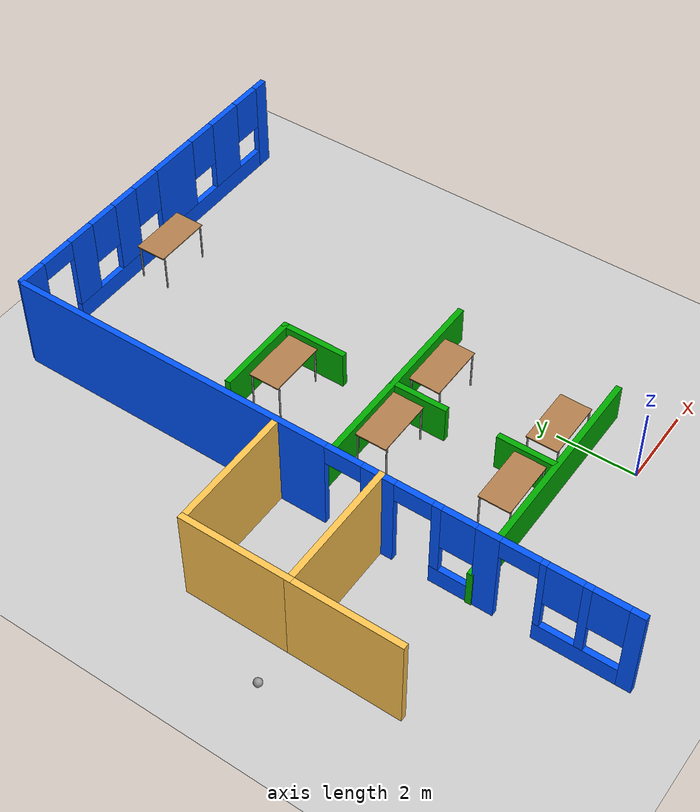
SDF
<sdf version="1.6">
 <world name="default">
  <model name="ground_plane">
   <static>1</static>
   <link name="link">
    <collision name="collision">
     <geometry><plane><normal>0 0 1</normal><size>100 100</size></plane></geometry>
     <surface><friction><ode><mu>100</mu><mu2>50</mu2></ode></friction></surface>
    </collision>
    <visual name="visual">
     <cast_shadows>0</cast_shadows>
     <geometry><plane><normal>0 0 1</normal><size>100 100</size></plane></geometry>
     <material>
      <script><uri>file://media/materials/scripts/gazebo.material</uri><name>Gazebo/Grey</name></script>
     </material>
    </visual>
   </link>
  </model>
  <model name="AMG">
   <pose>-3.41412 2.5474 0 0 -0 0</pose>
   <link name="Wall_71">
    <pose>2.99986 10.7012 0 0 -0 3.14159</pose>
    <visual name="Wall_71_Visual_0">
     <pose>-4.30265 0 1.25 0 -0 0</pose>
     <geometry><box><size>0.394695 0.15 2.5</size></box></geometry>
     <material>
      <script><uri>file://media/materials/scripts/gazebo.material</uri><name>Gazebo/Grey</name></script>
      <ambient>0 0.333333 1 1</ambient>
     </material>
     <meta><layer>0</layer></meta>
    </visual>
    <collision name="Wall_71_Collision_0">
     <geometry><box><size>0.394695 0.15 2.5</size></box></geometry>
     <pose>-4.30265 0 1.25 0 -0 0</pose>
    </collision>
    <visual name="Wall_71_Visual_1">
     <pose>4.13495 0 1.25 0 -0 0</pose>
     <geometry><box><size>0.7301 0.15 2.5</size></box></geometry>
     <material>
      <script><uri>file://media/materials/scripts/gazebo.material</uri><name>Gazebo/Grey</name></script>
      <ambient>0 0.333333 1 1</ambient>
     </material>
     <meta><layer>0</layer></meta>
    </visual>
    <collision name="Wall_71_Collision_1">
     <geometry><box><size>0.7301 0.15 2.5</size></box></geometry>
     <pose>4.13495 0 1.25 0 -0 0</pose>
    </collision>
    <visual name="Wall_71_Visual_2">
     <pose>-0.617703 0 0.25 0 -0 0</pose>
     <geometry><box><size>6.9752 0.15 0.5</size></box></geometry>
     <material>
      <script><uri>file://media/materials/scripts/gazebo.material</uri><name>Gazebo/Grey</name></script>
      <ambient>0 0.333333 1 1</ambient>
     </material>
     <meta><layer>0</layer></meta>
    </visual>
    <collision name="Wall_71_Collision_2">
     <geometry><box><size>6.9752 0.15 0.5</size></box></geometry>
     <pose>-0.617703 0 0.25 0 -0 0</pose>
    </collision>
    <visual name="Wall_71_Visual_3">
     <pose>-2.82135 0 1.5 0 -0 0</pose>
     <geometry><box><size>0.967909 0.15 2</size></box></geometry>
     <material>
      <script><uri>file://media/materials/scripts/gazebo.material</uri><name>Gazebo/Grey</name></script>
      <ambient>0 0.333333 1 1</ambient>
     </material>
     <meta><layer>0</layer></meta>
    </visual>
    <collision name="Wall_71_Collision_3">
     <geometry><box><size>0.967909 0.15 2</size></box></geometry>
     <pose>-2.82135 0 1.5 0 -0 0</pose>
    </collision>
    <visual name="Wall_71_Visual_4">
     <pose>-0.867346 0 1.5 0 -0 0</pose>
     <geometry><box><size>1.3401 0.15 2</size></box></geometry>
     <material>
      <script><uri>file://media/materials/scripts/gazebo.material</uri><name>Gazebo/Grey</name></script>
      <ambient>0 0.333333 1 1</ambient>
     </material>
     <meta><layer>0</layer></meta>
    </visual>
    <collision name="Wall_71_Collision_4">
     <geometry><box><size>1.3401 0.15 2</size></box></geometry>
     <pose>-0.867346 0 1.5 0 -0 0</pose>
    </collision>
    <visual name="Wall_71_Visual_5">
     <pose>0.970349 0 1.5 0 -0 0</pose>
     <geometry><box><size>0.735289 0.15 2</size></box></geometry>
     <material>
      <script><uri>file://media/materials/scripts/gazebo.material</uri><name>Gazebo/Grey</name></script>
      <ambient>0 0.333333 1 1</ambient>
     </material>
     <meta><layer>0</layer></meta>
    </visual>
    <collision name="Wall_71_Collision_5">
     <geometry><box><size>0.735289 0.15 2</size></box></geometry>
     <pose>0.970349 0 1.5 0 -0 0</pose>
    </collision>
    <visual name="Wall_71_Visual_6">
     <pose>2.50395 0 1.5 0 -0 0</pose>
     <geometry><box><size>0.731907 0.15 2</size></box></geometry>
     <material>
      <script><uri>file://media/materials/scripts/gazebo.material</uri><name>Gazebo/Grey</name></script>
      <ambient>0 0.333333 1 1</ambient>
     </material>
     <meta><layer>0</layer></meta>
    </visual>
    <collision name="Wall_71_Collision_6">
     <geometry><box><size>0.731907 0.15 2</size></box></geometry>
     <pose>2.50395 0 1.5 0 -0 0</pose>
    </collision>
    <visual name="Wall_71_Visual_7">
     <pose>-3.70531 0 1.9 0 -0 0</pose>
     <geometry><box><size>0.8 0.15 1.2</size></box></geometry>
     <material>
      <script><uri>file://media/materials/scripts/gazebo.material</uri><name>Gazebo/Grey</name></script>
      <ambient>0 0.333333 1 1</ambient>
     </material>
     <meta><layer>0</layer></meta>
    </visual>
    <collision name="Wall_71_Collision_7">
     <geometry><box><size>0.8 0.15 1.2</size></box></geometry>
     <pose>-3.70531 0 1.9 0 -0 0</pose>
    </collision>
    <visual name="Wall_71_Visual_8">
     <pose>-1.9374 0 1.9 0 -0 0</pose>
     <geometry><box><size>0.8 0.15 1.2</size></box></geometry>
     <material>
      <script><uri>file://media/materials/scripts/gazebo.material</uri><name>Gazebo/Grey</name></script>
      <ambient>0 0.333333 1 1</ambient>
     </material>
     <meta><layer>0</layer></meta>
    </visual>
    <collision name="Wall_71_Collision_8">
     <geometry><box><size>0.8 0.15 1.2</size></box></geometry>
     <pose>-1.9374 0 1.9 0 -0 0</pose>
    </collision>
    <visual name="Wall_71_Visual_9">
     <pose>0.202704 0 1.9 0 -0 0</pose>
     <geometry><box><size>0.8 0.15 1.2</size></box></geometry>
     <material>
      <script><uri>file://media/materials/scripts/gazebo.material</uri><name>Gazebo/Grey</name></script>
      <ambient>0 0.333333 1 1</ambient>
     </material>
     <meta><layer>0</layer></meta>
    </visual>
    <collision name="Wall_71_Collision_9">
     <geometry><box><size>0.8 0.15 1.2</size></box></geometry>
     <pose>0.202704 0 1.9 0 -0 0</pose>
    </collision>
    <visual name="Wall_71_Visual_10">
     <pose>1.73799 0 1.9 0 -0 0</pose>
     <geometry><box><size>0.8 0.15 1.2</size></box></geometry>
     <material>
      <script><uri>file://media/materials/scripts/gazebo.material</uri><name>Gazebo/Grey</name></script>
      <ambient>0 0.333333 1 1</ambient>
     </material>
     <meta><layer>0</layer></meta>
    </visual>
    <collision name="Wall_71_Collision_10">
     <geometry><box><size>0.8 0.15 1.2</size></box></geometry>
     <pose>1.73799 0 1.9 0 -0 0</pose>
    </collision>
    <visual name="Wall_71_Visual_11">
     <pose>3.3199 0 2.25 0 -0 0</pose>
     <geometry><box><size>0.9 0.15 0.5</size></box></geometry>
     <material>
      <script><uri>file://media/materials/scripts/gazebo.material</uri><name>Gazebo/Grey</name></script>
      <ambient>0 0.333333 1 1</ambient>
     </material>
     <meta><layer>0</layer></meta>
    </visual>
    <collision name="Wall_71_Collision_11">
     <geometry><box><size>0.9 0.15 0.5</size></box></geometry>
     <pose>3.3199 0 2.25 0 -0 0</pose>
    </collision>
   </link>
   <link name="Wall_74">
    <pose>-1.47514 2.8012 0 0 -0 1.5708</pose>
    <visual name="Wall_74_Visual_0">
     <pose>-7.7005 0 1.25 0 -0 0</pose>
     <geometry><box><size>0.349009 0.15 2.5</size></box></geometry>
     <material>
      <script><uri>file://media/materials/scripts/gazebo.material</uri><name>Gazebo/Grey</name></script>
      <ambient>0 0.333333 1 1</ambient>
     </material>
     <meta><layer>0</layer></meta>
    </visual>
    <collision name="Wall_74_Collision_0">
     <geometry><box><size>0.349009 0.15 2.5</size></box></geometry>
     <pose>-7.7005 0 1.25 0 -0 0</pose>
    </collision>
    <visual name="Wall_74_Visual_1">
     <pose>-4.40745 0 1.25 0 -0 0</pose>
     <geometry><box><size>0.549339 0.15 2.5</size></box></geometry>
     <material>
      <script><uri>file://media/materials/scripts/gazebo.material</uri><name>Gazebo/Grey</name></script>
      <ambient>0 0.333333 1 1</ambient>
     </material>
     <meta><layer>0</layer></meta>
    </visual>
    <collision name="Wall_74_Collision_1">
     <geometry><box><size>0.549339 0.15 2.5</size></box></geometry>
     <pose>-4.40745 0 1.25 0 -0 0</pose>
    </collision>
    <visual name="Wall_74_Visual_2">
     <pose>-1.8056 0 1.25 0 -0 0</pose>
     <geometry><box><size>0.813053 0.15 2.5</size></box></geometry>
     <material>
      <script><uri>file://media/materials/scripts/gazebo.material</uri><name>Gazebo/Grey</name></script>
      <ambient>0 0.333333 1 1</ambient>
     </material>
     <meta><layer>0</layer></meta>
    </visual>
    <collision name="Wall_74_Collision_2">
     <geometry><box><size>0.813053 0.15 2.5</size></box></geometry>
     <pose>-1.8056 0 1.25 0 -0 0</pose>
    </collision>
    <visual name="Wall_74_Visual_3">
     <pose>3.68796 0 1.25 0 -0 0</pose>
     <geometry><box><size>8.37407 0.15 2.5</size></box></geometry>
     <material>
      <script><uri>file://media/materials/scripts/gazebo.material</uri><name>Gazebo/Grey</name></script>
      <ambient>0 0.333333 1 1</ambient>
     </material>
     <meta><layer>0</layer></meta>
    </visual>
    <collision name="Wall_74_Collision_3">
     <geometry><box><size>8.37407 0.15 2.5</size></box></geometry>
     <pose>3.68796 0 1.25 0 -0 0</pose>
    </collision>
    <visual name="Wall_74_Visual_4">
     <pose>-6.55406 0 0.25 0 -0 0</pose>
     <geometry><box><size>1.94387 0.15 0.5</size></box></geometry>
     <material>
      <script><uri>file://media/materials/scripts/gazebo.material</uri><name>Gazebo/Grey</name></script>
      <ambient>0 0.333333 1 1</ambient>
     </material>
     <meta><layer>0</layer></meta>
    </visual>
    <collision name="Wall_74_Collision_4">
     <geometry><box><size>1.94387 0.15 0.5</size></box></geometry>
     <pose>-6.55406 0 0.25 0 -0 0</pose>
    </collision>
    <visual name="Wall_74_Visual_5">
     <pose>-3.62246 0 0.25 0 -0 0</pose>
     <geometry><box><size>1.02066 0.15 0.5</size></box></geometry>
     <material>
      <script><uri>file://media/materials/scripts/gazebo.material</uri><name>Gazebo/Grey</name></script>
      <ambient>0 0.333333 1 1</ambient>
     </material>
     <meta><layer>0</layer></meta>
    </visual>
    <collision name="Wall_74_Collision_5">
     <geometry><box><size>1.02066 0.15 0.5</size></box></geometry>
     <pose>-3.62246 0 0.25 0 -0 0</pose>
    </collision>
    <visual name="Wall_74_Visual_6">
     <pose>-6.62752 0 1.5 0 -0 0</pose>
     <geometry><box><size>0.196934 0.15 2</size></box></geometry>
     <material>
      <script><uri>file://media/materials/scripts/gazebo.material</uri><name>Gazebo/Grey</name></script>
      <ambient>0 0.333333 1 1</ambient>
     </material>
     <meta><layer>0</layer></meta>
    </visual>
    <collision name="Wall_74_Collision_6">
     <geometry><box><size>0.196934 0.15 2</size></box></geometry>
     <pose>-6.62752 0 1.5 0 -0 0</pose>
    </collision>
    <visual name="Wall_74_Visual_7">
     <pose>-5.65559 0 1.5 0 -0 0</pose>
     <geometry><box><size>0.146934 0.15 2</size></box></geometry>
     <material>
      <script><uri>file://media/materials/scripts/gazebo.material</uri><name>Gazebo/Grey</name></script>
      <ambient>0 0.333333 1 1</ambient>
     </material>
     <meta><layer>0</layer></meta>
    </visual>
    <collision name="Wall_74_Collision_7">
     <geometry><box><size>0.146934 0.15 2</size></box></geometry>
     <pose>-5.65559 0 1.5 0 -0 0</pose>
    </collision>
    <visual name="Wall_74_Visual_8">
     <pose>-5.65559 0 1.5 0 -0 0</pose>
     <geometry><box><size>0.146934 0.15 2</size></box></geometry>
     <material>
      <script><uri>file://media/materials/scripts/gazebo.material</uri><name>Gazebo/Grey</name></script>
      <ambient>0 0.333333 1 1</ambient>
     </material>
     <meta><layer>0</layer></meta>
    </visual>
    <collision name="Wall_74_Collision_8">
     <geometry><box><size>0.146934 0.15 2</size></box></geometry>
     <pose>-5.65559 0 1.5 0 -0 0</pose>
    </collision>
    <visual name="Wall_74_Visual_9">
     <pose>-3.22246 0 1.5 0 -0 0</pose>
     <geometry><box><size>0.220658 0.15 2</size></box></geometry>
     <material>
      <script><uri>file://media/materials/scripts/gazebo.material</uri><name>Gazebo/Grey</name></script>
      <ambient>0 0.333333 1 1</ambient>
     </material>
     <meta><layer>0</layer></meta>
    </visual>
    <collision name="Wall_74_Collision_9">
     <geometry><box><size>0.220658 0.15 2</size></box></geometry>
     <pose>-3.22246 0 1.5 0 -0 0</pose>
    </collision>
    <visual name="Wall_74_Visual_10">
     <pose>-7.12599 0 1.9 0 -0 0</pose>
     <geometry><box><size>0.8 0.15 1.2</size></box></geometry>
     <material>
      <script><uri>file://media/materials/scripts/gazebo.material</uri><name>Gazebo/Grey</name></script>
      <ambient>0 0.333333 1 1</ambient>
     </material>
     <meta><layer>0</layer></meta>
    </visual>
    <collision name="Wall_74_Collision_10">
     <geometry><box><size>0.8 0.15 1.2</size></box></geometry>
     <pose>-7.12599 0 1.9 0 -0 0</pose>
    </collision>
    <visual name="Wall_74_Visual_11">
     <pose>-3.73278 0 1.9 0 -0 0</pose>
     <geometry><box><size>0.8 0.15 1.2</size></box></geometry>
     <material>
      <script><uri>file://media/materials/scripts/gazebo.material</uri><name>Gazebo/Grey</name></script>
      <ambient>0 0.333333 1 1</ambient>
     </material>
     <meta><layer>0</layer></meta>
    </visual>
    <collision name="Wall_74_Collision_11">
     <geometry><box><size>0.8 0.15 1.2</size></box></geometry>
     <pose>-3.73278 0 1.9 0 -0 0</pose>
    </collision>
    <visual name="Wall_74_Visual_12">
     <pose>-6.12906 0 1.9 0 -0 0</pose>
     <geometry><box><size>0.8 0.15 1.2</size></box></geometry>
     <material>
      <script><uri>file://media/materials/scripts/gazebo.material</uri><name>Gazebo/Grey</name></script>
      <ambient>0 0.333333 1 1</ambient>
     </material>
     <meta><layer>0</layer></meta>
    </visual>
    <collision name="Wall_74_Collision_12">
     <geometry><box><size>0.8 0.15 1.2</size></box></geometry>
     <pose>-6.12906 0 1.9 0 -0 0</pose>
    </collision>
    <visual name="Wall_74_Visual_13">
     <pose>-0.949074 0 2.25 0 -0 0</pose>
     <geometry><box><size>0.9 0.15 0.5</size></box></geometry>
     <material>
      <script><uri>file://media/materials/scripts/gazebo.material</uri><name>Gazebo/Grey</name></script>
      <ambient>0 0.333333 1 1</ambient>
     </material>
     <meta><layer>0</layer></meta>
    </visual>
    <collision name="Wall_74_Collision_13">
     <geometry><box><size>0.9 0.15 0.5</size></box></geometry>
     <pose>-0.949074 0 2.25 0 -0 0</pose>
    </collision>
    <visual name="Wall_74_Visual_14">
     <pose>-5.13212 0 2.25 0 -0 0</pose>
     <geometry><box><size>0.9 0.15 0.5</size></box></geometry>
     <material>
      <script><uri>file://media/materials/scripts/gazebo.material</uri><name>Gazebo/Grey</name></script>
      <ambient>0 0.333333 1 1</ambient>
     </material>
     <meta><layer>0</layer></meta>
    </visual>
    <collision name="Wall_74_Collision_14">
     <geometry><box><size>0.9 0.15 0.5</size></box></geometry>
     <pose>-5.13212 0 2.25 0 -0 0</pose>
    </collision>
    <visual name="Wall_74_Visual_15">
     <pose>-5.13212 0 2.25 0 -0 0</pose>
     <geometry><box><size>0.9 0.15 0.5</size></box></geometry>
     <material>
      <script><uri>file://media/materials/scripts/gazebo.material</uri><name>Gazebo/Grey</name></script>
      <ambient>0 0.333333 1 1</ambient>
     </material>
     <meta><layer>0</layer></meta>
    </visual>
    <collision name="Wall_74_Collision_15">
     <geometry><box><size>0.9 0.15 0.5</size></box></geometry>
     <pose>-5.13212 0 2.25 0 -0 0</pose>
    </collision>
    <visual name="Wall_74_Visual_16">
     <pose>-2.66213 0 2.25 0 -0 0</pose>
     <geometry><box><size>0.9 0.15 0.5</size></box></geometry>
     <material>
      <script><uri>file://media/materials/scripts/gazebo.material</uri><name>Gazebo/Grey</name></script>
      <ambient>0 0.333333 1 1</ambient>
     </material>
     <meta><layer>0</layer></meta>
    </visual>
    <collision name="Wall_74_Collision_16">
     <geometry><box><size>0.9 0.15 0.5</size></box></geometry>
     <pose>-2.66213 0 2.25 0 -0 0</pose>
    </collision>
   </link>
   <link name="Wall_83">
    <collision name="Wall_83_Collision">
     <geometry><box><size>2.75 0.15 2.5</size></box></geometry>
     <pose>0 0 1.25 0 -0 0</pose>
    </collision>
    <visual name="Wall_83_Visual">
     <pose>0 0 1.25 0 -0 0</pose>
     <geometry><box><size>2.75 0.15 2.5</size></box></geometry>
     <material>
      <script><uri>file://media/materials/scripts/gazebo.material</uri><name>Gazebo/Grey</name></script>
      <ambient>1 0.764706 0.305882 1</ambient>
     </material>
     <meta><layer>0</layer></meta>
    </visual>
    <pose>-4.57515 -0.348795 0 0 -0 1.5708</pose>
   </link>
   <link name="Wall_84">
    <collision name="Wall_84_Collision">
     <geometry><box><size>3.25 0.15 2.5</size></box></geometry>
     <pose>0 0 1.25 0 -0 0</pose>
    </collision>
    <visual name="Wall_84_Visual">
     <pose>0 0 1.25 0 -0 0</pose>
     <geometry><box><size>3.25 0.15 2.5</size></box></geometry>
     <material>
      <script><uri>file://media/materials/scripts/gazebo.material</uri><name>Gazebo/Grey</name></script>
      <ambient>1 0.764706 0.305882 1</ambient>
     </material>
     <meta><layer>0</layer></meta>
    </visual>
    <pose>-3.02515 0.951205 0 0 -0 0</pose>
   </link>
   <link name="Wall_86">
    <collision name="Wall_86_Collision">
     <geometry><box><size>2.75 0.15 2.5</size></box></geometry>
     <pose>0 0 1.25 0 -0 0</pose>
    </collision>
    <visual name="Wall_86_Visual">
     <pose>0 0 1.25 0 -0 0</pose>
     <geometry><box><size>2.75 0.15 2.5</size></box></geometry>
     <material>
      <script><uri>file://media/materials/scripts/gazebo.material</uri><name>Gazebo/Grey</name></script>
      <ambient>1 0.764706 0.305882 1</ambient>
     </material>
     <meta><layer>0</layer></meta>
    </visual>
    <pose>-4.57515 2.2512 0 0 -0 1.5708</pose>
   </link>
   <link name="Wall_87">
    <collision name="Wall_87_Collision">
     <geometry><box><size>3.25 0.15 2.5</size></box></geometry>
     <pose>0 0 1.25 0 -0 0</pose>
    </collision>
    <visual name="Wall_87_Visual">
     <pose>0 0 1.25 0 -0 0</pose>
     <geometry><box><size>3.25 0.15 2.5</size></box></geometry>
     <material>
      <script><uri>file://media/materials/scripts/gazebo.material</uri><name>Gazebo/Grey</name></script>
      <ambient>1 0.764706 0.305882 1</ambient>
     </material>
     <meta><layer>0</layer></meta>
    </visual>
    <pose>-3.02515 3.5512 0 0 -0 0</pose>
   </link>
   <link name="Wall_89">
    <collision name="Wall_89_Collision">
     <geometry><box><size>6.25 0.15 1</size></box></geometry>
     <pose>0 0 0.5 0 -0 0</pose>
    </collision>
    <visual name="Wall_89_Visual">
     <pose>0 0 0.5 0 -0 0</pose>
     <geometry><box><size>6.25 0.15 1</size></box></geometry>
     <material>
      <script><uri>file://media/materials/scripts/gazebo.material</uri><name>Gazebo/Grey</name></script>
      <ambient>0 0.666667 0 1</ambient>
     </material>
     <meta><layer>0</layer></meta>
    </visual>
    <pose>1.54913 -1.30641 0 0 -0 0</pose>
   </link>
   <link name="Wall_91">
    <collision name="Wall_91_Collision">
     <geometry><box><size>1.5 0.15 1</size></box></geometry>
     <pose>0 0 0.5 0 -0 0</pose>
    </collision>
    <visual name="Wall_91_Visual">
     <pose>0 0 0.5 0 -0 0</pose>
     <geometry><box><size>1.5 0.15 1</size></box></geometry>
     <material>
      <script><uri>file://media/materials/scripts/gazebo.material</uri><name>Gazebo/Grey</name></script>
      <ambient>0 0.666667 0 1</ambient>
     </material>
     <meta><layer>0</layer></meta>
    </visual>
    <pose>1.92213 -0.578405 0 0 -0 1.5708</pose>
   </link>
   <link name="Wall_93">
    <collision name="Wall_93_Collision">
     <geometry><box><size>6.25 0.15 1</size></box></geometry>
     <pose>0 0 0.5 0 -0 0</pose>
    </collision>
    <visual name="Wall_93_Visual">
     <pose>0 0 0.5 0 -0 0</pose>
     <geometry><box><size>6.25 0.15 1</size></box></geometry>
     <material>
      <script><uri>file://media/materials/scripts/gazebo.material</uri><name>Gazebo/Grey</name></script>
      <ambient>0 0.666667 0 1</ambient>
     </material>
     <meta><layer>0</layer></meta>
    </visual>
    <pose>1.59614 2.89359 0 0 -0 0</pose>
   </link>
   <link name="Wall_95">
    <collision name="Wall_95_Collision">
     <geometry><box><size>1.5 0.15 1</size></box></geometry>
     <pose>0 0 0.5 0 -0 0</pose>
    </collision>
    <visual name="Wall_95_Visual">
     <pose>0 0 0.5 0 -0 0</pose>
     <geometry><box><size>1.5 0.15 1</size></box></geometry>
     <material>
      <script><uri>file://media/materials/scripts/gazebo.material</uri><name>Gazebo/Grey</name></script>
      <ambient>0 0.666667 0 1</ambient>
     </material>
     <meta><layer>0</layer></meta>
    </visual>
    <pose>1.91114 2.2186 0 0 0 -1.5708</pose>
   </link>
   <link name="Wall_98">
    <collision name="Wall_98_Collision">
     <geometry><box><size>1.75 0.15 1</size></box></geometry>
     <pose>0 0 0.5 0 -0 0</pose>
    </collision>
    <visual name="Wall_98_Visual">
     <pose>0 0 0.5 0 -0 0</pose>
     <geometry><box><size>1.75 0.15 1</size></box></geometry>
     <material>
      <script><uri>file://media/materials/scripts/gazebo.material</uri><name>Gazebo/Grey</name></script>
      <ambient>0 0.666667 0 1</ambient>
     </material>
     <meta><layer>0</layer></meta>
    </visual>
    <pose>1.97514 5.1516 0 0 -0 1.5708</pose>
   </link>
   <link name="Wall_99">
    <collision name="Wall_99_Collision">
     <geometry><box><size>2.25 0.15 1</size></box></geometry>
     <pose>0 0 0.5 0 -0 0</pose>
    </collision>
    <visual name="Wall_99_Visual">
     <pose>0 0 0.5 0 -0 0</pose>
     <geometry><box><size>2.25 0.15 1</size></box></geometry>
     <material>
      <script><uri>file://media/materials/scripts/gazebo.material</uri><name>Gazebo/Grey</name></script>
      <ambient>0 0.666667 0 1</ambient>
     </material>
     <meta><layer>0</layer></meta>
    </visual>
    <pose>0.925135 5.95159 0 0 -0 3.14159</pose>
   </link>
   <static>1</static>
  </model>
  <model name="table_1_clone_2">
   <static>1</static>
   <link name="link">
    <collision name="surface">
     <pose>0 0 1 0 -0 0</pose>
     <geometry><box><size>1.5 0.8 0.03</size></box></geometry>
     <surface><friction><ode><mu>0.6</mu><mu2>0.6</mu2></ode></friction></surface>
    </collision>
    <visual name="visual1">
     <pose>0 0 1 0 -0 0</pose>
     <geometry><box><size>1.5 0.8 0.03</size></box></geometry>
     <material>
      <script><uri>file://media/materials/scripts/gazebo.material</uri><name>Gazebo/Wood</name></script>
     </material>
    </visual>
    <collision name="front_left_leg">
     <pose>0.68 0.38 0.5 0 -0 0</pose>
     <geometry><cylinder><radius>0.02</radius><length>1</length></cylinder></geometry>
    </collision>
    <visual name="front_left_leg">
     <pose>0.68 0.38 0.5 0 -0 0</pose>
     <geometry><cylinder><radius>0.02</radius><length>1</length></cylinder></geometry>
     <material>
      <script><uri>file://media/materials/scripts/gazebo.material</uri><name>Gazebo/Grey</name></script>
     </material>
    </visual>
    <collision name="front_right_leg">
     <pose>0.68 -0.38 0.5 0 -0 0</pose>
     <geometry><cylinder><radius>0.02</radius><length>1</length></cylinder></geometry>
    </collision>
    <visual name="front_right_leg">
     <pose>0.68 -0.38 0.5 0 -0 0</pose>
     <geometry><cylinder><radius>0.02</radius><length>1</length></cylinder></geometry>
     <material>
      <script><uri>file://media/materials/scripts/gazebo.material</uri><name>Gazebo/Grey</name></script>
     </material>
    </visual>
    <collision name="back_right_leg">
     <pose>-0.68 -0.38 0.5 0 -0 0</pose>
     <geometry><cylinder><radius>0.02</radius><length>1</length></cylinder></geometry>
    </collision>
    <visual name="back_right_leg">
     <pose>-0.68 -0.38 0.5 0 -0 0</pose>
     <geometry><cylinder><radius>0.02</radius><length>1</length></cylinder></geometry>
     <material>
      <script><uri>file://media/materials/scripts/gazebo.material</uri><name>Gazebo/Grey</name></script>
     </material>
    </visual>
    <collision name="back_left_leg">
     <pose>-0.68 0.38 0.5 0 -0 0</pose>
     <geometry><cylinder><radius>0.02</radius><length>1</length></cylinder></geometry>
    </collision>
    <visual name="back_left_leg">
     <pose>-0.68 0.38 0.5 0 -0 0</pose>
     <geometry><cylinder><radius>0.02</radius><length>1</length></cylinder></geometry>
     <material>
      <script><uri>file://media/materials/scripts/gazebo.material</uri><name>Gazebo/Grey</name></script>
     </material>
    </visual>
   </link>
   <pose>-2.44257 1.78119 0 0 -0 0</pose>
  </model>
  <model name="table_1_clone_3">
   <static>1</static>
   <link name="link">
    <collision name="surface">
     <pose>0 0 1 0 -0 0</pose>
     <geometry><box><size>1.5 0.8 0.03</size></box></geometry>
     <surface><friction><ode><mu>0.6</mu><mu2>0.6</mu2></ode></friction></surface>
    </collision>
    <visual name="visual1">
     <pose>0 0 1 0 -0 0</pose>
     <geometry><box><size>1.5 0.8 0.03</size></box></geometry>
     <material>
      <script><uri>file://media/materials/scripts/gazebo.material</uri><name>Gazebo/Wood</name></script>
     </material>
    </visual>
    <collision name="front_left_leg">
     <pose>0.68 0.38 0.5 0 -0 0</pose>
     <geometry><cylinder><radius>0.02</radius><length>1</length></cylinder></geometry>
    </collision>
    <visual name="front_left_leg">
     <pose>0.68 0.38 0.5 0 -0 0</pose>
     <geometry><cylinder><radius>0.02</radius><length>1</length></cylinder></geometry>
     <material>
      <script><uri>file://media/materials/scripts/gazebo.material</uri><name>Gazebo/Grey</name></script>
     </material>
    </visual>
    <collision name="front_right_leg">
     <pose>0.68 -0.38 0.5 0 -0 0</pose>
     <geometry><cylinder><radius>0.02</radius><length>1</length></cylinder></geometry>
    </collision>
    <visual name="front_right_leg">
     <pose>0.68 -0.38 0.5 0 -0 0</pose>
     <geometry><cylinder><radius>0.02</radius><length>1</length></cylinder></geometry>
     <material>
      <script><uri>file://media/materials/scripts/gazebo.material</uri><name>Gazebo/Grey</name></script>
     </material>
    </visual>
    <collision name="back_right_leg">
     <pose>-0.68 -0.38 0.5 0 -0 0</pose>
     <geometry><cylinder><radius>0.02</radius><length>1</length></cylinder></geometry>
    </collision>
    <visual name="back_right_leg">
     <pose>-0.68 -0.38 0.5 0 -0 0</pose>
     <geometry><cylinder><radius>0.02</radius><length>1</length></cylinder></geometry>
     <material>
      <script><uri>file://media/materials/scripts/gazebo.material</uri><name>Gazebo/Grey</name></script>
     </material>
    </visual>
    <collision name="back_left_leg">
     <pose>-0.68 0.38 0.5 0 -0 0</pose>
     <geometry><cylinder><radius>0.02</radius><length>1</length></cylinder></geometry>
    </collision>
    <visual name="back_left_leg">
     <pose>-0.68 0.38 0.5 0 -0 0</pose>
     <geometry><cylinder><radius>0.02</radius><length>1</length></cylinder></geometry>
     <material>
      <script><uri>file://media/materials/scripts/gazebo.material</uri><name>Gazebo/Grey</name></script>
     </material>
    </visual>
   </link>
   <pose>-0.443807 1.79805 0 0 -0 0</pose>
  </model>
  <model name="table_1_clone_4">
   <static>1</static>
   <link name="link">
    <collision name="surface">
     <pose>0 0 1 0 -0 0</pose>
     <geometry><box><size>1.5 0.8 0.03</size></box></geometry>
     <surface><friction><ode><mu>0.6</mu><mu2>0.6</mu2></ode></friction></surface>
    </collision>
    <visual name="visual1">
     <pose>0 0 1 0 -0 0</pose>
     <geometry><box><size>1.5 0.8 0.03</size></box></geometry>
     <material>
      <script><uri>file://media/materials/scripts/gazebo.material</uri><name>Gazebo/Wood</name></script>
     </material>
    </visual>
    <collision name="front_left_leg">
     <pose>0.68 0.38 0.5 0 -0 0</pose>
     <geometry><cylinder><radius>0.02</radius><length>1</length></cylinder></geometry>
    </collision>
    <visual name="front_left_leg">
     <pose>0.68 0.38 0.5 0 -0 0</pose>
     <geometry><cylinder><radius>0.02</radius><length>1</length></cylinder></geometry>
     <material>
      <script><uri>file://media/materials/scripts/gazebo.material</uri><name>Gazebo/Grey</name></script>
     </material>
    </visual>
    <collision name="front_right_leg">
     <pose>0.68 -0.38 0.5 0 -0 0</pose>
     <geometry><cylinder><radius>0.02</radius><length>1</length></cylinder></geometry>
    </collision>
    <visual name="front_right_leg">
     <pose>0.68 -0.38 0.5 0 -0 0</pose>
     <geometry><cylinder><radius>0.02</radius><length>1</length></cylinder></geometry>
     <material>
      <script><uri>file://media/materials/scripts/gazebo.material</uri><name>Gazebo/Grey</name></script>
     </material>
    </visual>
    <collision name="back_right_leg">
     <pose>-0.68 -0.38 0.5 0 -0 0</pose>
     <geometry><cylinder><radius>0.02</radius><length>1</length></cylinder></geometry>
    </collision>
    <visual name="back_right_leg">
     <pose>-0.68 -0.38 0.5 0 -0 0</pose>
     <geometry><cylinder><radius>0.02</radius><length>1</length></cylinder></geometry>
     <material>
      <script><uri>file://media/materials/scripts/gazebo.material</uri><name>Gazebo/Grey</name></script>
     </material>
    </visual>
    <collision name="back_left_leg">
     <pose>-0.68 0.38 0.5 0 -0 0</pose>
     <geometry><cylinder><radius>0.02</radius><length>1</length></cylinder></geometry>
    </collision>
    <visual name="back_left_leg">
     <pose>-0.68 0.38 0.5 0 -0 0</pose>
     <geometry><cylinder><radius>0.02</radius><length>1</length></cylinder></geometry>
     <material>
      <script><uri>file://media/materials/scripts/gazebo.material</uri><name>Gazebo/Grey</name></script>
     </material>
    </visual>
   </link>
   <pose>-2.5067 4.86641 0 0 -0 0</pose>
  </model>
  <model name="table_1_clone_5">
   <static>1</static>
   <link name="link">
    <collision name="surface">
     <pose>0 0 1 0 -0 0</pose>
     <geometry><box><size>1.5 0.8 0.03</size></box></geometry>
     <surface><friction><ode><mu>0.6</mu><mu2>0.6</mu2></ode></friction></surface>
    </collision>
    <visual name="visual1">
     <pose>0 0 1 0 -0 0</pose>
     <geometry><box><size>1.5 0.8 0.03</size></box></geometry>
     <material>
      <script><uri>file://media/materials/scripts/gazebo.material</uri><name>Gazebo/Wood</name></script>
     </material>
    </visual>
    <collision name="front_left_leg">
     <pose>0.68 0.38 0.5 0 -0 0</pose>
     <geometry><cylinder><radius>0.02</radius><length>1</length></cylinder></geometry>
    </collision>
    <visual name="front_left_leg">
     <pose>0.68 0.38 0.5 0 -0 0</pose>
     <geometry><cylinder><radius>0.02</radius><length>1</length></cylinder></geometry>
     <material>
      <script><uri>file://media/materials/scripts/gazebo.material</uri><name>Gazebo/Grey</name></script>
     </material>
    </visual>
    <collision name="front_right_leg">
     <pose>0.68 -0.38 0.5 0 -0 0</pose>
     <geometry><cylinder><radius>0.02</radius><length>1</length></cylinder></geometry>
    </collision>
    <visual name="front_right_leg">
     <pose>0.68 -0.38 0.5 0 -0 0</pose>
     <geometry><cylinder><radius>0.02</radius><length>1</length></cylinder></geometry>
     <material>
      <script><uri>file://media/materials/scripts/gazebo.material</uri><name>Gazebo/Grey</name></script>
     </material>
    </visual>
    <collision name="back_right_leg">
     <pose>-0.68 -0.38 0.5 0 -0 0</pose>
     <geometry><cylinder><radius>0.02</radius><length>1</length></cylinder></geometry>
    </collision>
    <visual name="back_right_leg">
     <pose>-0.68 -0.38 0.5 0 -0 0</pose>
     <geometry><cylinder><radius>0.02</radius><length>1</length></cylinder></geometry>
     <material>
      <script><uri>file://media/materials/scripts/gazebo.material</uri><name>Gazebo/Grey</name></script>
     </material>
    </visual>
    <collision name="back_left_leg">
     <pose>-0.68 0.38 0.5 0 -0 0</pose>
     <geometry><cylinder><radius>0.02</radius><length>1</length></cylinder></geometry>
    </collision>
    <visual name="back_left_leg">
     <pose>-0.68 0.38 0.5 0 -0 0</pose>
     <geometry><cylinder><radius>0.02</radius><length>1</length></cylinder></geometry>
     <material>
      <script><uri>file://media/materials/scripts/gazebo.material</uri><name>Gazebo/Grey</name></script>
     </material>
    </visual>
   </link>
   <pose>-0.467535 4.8171 0 0 -0 0</pose>
  </model>
  <model name="table_1_clone_6">
   <static>1</static>
   <link name="link">
    <collision name="surface">
     <pose>0 0 1 0 -0 0</pose>
     <geometry><box><size>1.5 0.8 0.03</size></box></geometry>
     <surface><friction><ode><mu>0.6</mu><mu2>0.6</mu2></ode></friction></surface>
    </collision>
    <visual name="visual1">
     <pose>0 0 1 0 -0 0</pose>
     <geometry><box><size>1.5 0.8 0.03</size></box></geometry>
     <material>
      <script><uri>file://media/materials/scripts/gazebo.material</uri><name>Gazebo/Wood</name></script>
     </material>
    </visual>
    <collision name="front_left_leg">
     <pose>0.68 0.38 0.5 0 -0 0</pose>
     <geometry><cylinder><radius>0.02</radius><length>1</length></cylinder></geometry>
    </collision>
    <visual name="front_left_leg">
     <pose>0.68 0.38 0.5 0 -0 0</pose>
     <geometry><cylinder><radius>0.02</radius><length>1</length></cylinder></geometry>
     <material>
      <script><uri>file://media/materials/scripts/gazebo.material</uri><name>Gazebo/Grey</name></script>
     </material>
    </visual>
    <collision name="front_right_leg">
     <pose>0.68 -0.38 0.5 0 -0 0</pose>
     <geometry><cylinder><radius>0.02</radius><length>1</length></cylinder></geometry>
    </collision>
    <visual name="front_right_leg">
     <pose>0.68 -0.38 0.5 0 -0 0</pose>
     <geometry><cylinder><radius>0.02</radius><length>1</length></cylinder></geometry>
     <material>
      <script><uri>file://media/materials/scripts/gazebo.material</uri><name>Gazebo/Grey</name></script>
     </material>
    </visual>
    <collision name="back_right_leg">
     <pose>-0.68 -0.38 0.5 0 -0 0</pose>
     <geometry><cylinder><radius>0.02</radius><length>1</length></cylinder></geometry>
    </collision>
    <visual name="back_right_leg">
     <pose>-0.68 -0.38 0.5 0 -0 0</pose>
     <geometry><cylinder><radius>0.02</radius><length>1</length></cylinder></geometry>
     <material>
      <script><uri>file://media/materials/scripts/gazebo.material</uri><name>Gazebo/Grey</name></script>
     </material>
    </visual>
    <collision name="back_left_leg">
     <pose>-0.68 0.38 0.5 0 -0 0</pose>
     <geometry><cylinder><radius>0.02</radius><length>1</length></cylinder></geometry>
    </collision>
    <visual name="back_left_leg">
     <pose>-0.68 0.38 0.5 0 -0 0</pose>
     <geometry><cylinder><radius>0.02</radius><length>1</length></cylinder></geometry>
     <material>
      <script><uri>file://media/materials/scripts/gazebo.material</uri><name>Gazebo/Grey</name></script>
     </material>
    </visual>
   </link>
   <pose>-2.41511 7.82554 0 0 -0 0</pose>
  </model>
  <model name="table_1_clone_8">
   <static>1</static>
   <link name="link">
    <collision name="surface">
     <pose>0 0 1 0 -0 0</pose>
     <geometry><box><size>1.5 0.8 0.03</size></box></geometry>
     <surface><friction><ode><mu>0.6</mu><mu2>0.6</mu2></ode></friction></surface>
    </collision>
    <visual name="visual1">
     <pose>0 0 1 0 -0 0</pose>
     <geometry><box><size>1.5 0.8 0.03</size></box></geometry>
     <material>
      <script><uri>file://media/materials/scripts/gazebo.material</uri><name>Gazebo/Wood</name></script>
     </material>
    </visual>
    <collision name="front_left_leg">
     <pose>0.68 0.38 0.5 0 -0 0</pose>
     <geometry><cylinder><radius>0.02</radius><length>1</length></cylinder></geometry>
    </collision>
    <visual name="front_left_leg">
     <pose>0.68 0.38 0.5 0 -0 0</pose>
     <geometry><cylinder><radius>0.02</radius><length>1</length></cylinder></geometry>
     <material>
      <script><uri>file://media/materials/scripts/gazebo.material</uri><name>Gazebo/Grey</name></script>
     </material>
    </visual>
    <collision name="front_right_leg">
     <pose>0.68 -0.38 0.5 0 -0 0</pose>
     <geometry><cylinder><radius>0.02</radius><length>1</length></cylinder></geometry>
    </collision>
    <visual name="front_right_leg">
     <pose>0.68 -0.38 0.5 0 -0 0</pose>
     <geometry><cylinder><radius>0.02</radius><length>1</length></cylinder></geometry>
     <material>
      <script><uri>file://media/materials/scripts/gazebo.material</uri><name>Gazebo/Grey</name></script>
     </material>
    </visual>
    <collision name="back_right_leg">
     <pose>-0.68 -0.38 0.5 0 -0 0</pose>
     <geometry><cylinder><radius>0.02</radius><length>1</length></cylinder></geometry>
    </collision>
    <visual name="back_right_leg">
     <pose>-0.68 -0.38 0.5 0 -0 0</pose>
     <geometry><cylinder><radius>0.02</radius><length>1</length></cylinder></geometry>
     <material>
      <script><uri>file://media/materials/scripts/gazebo.material</uri><name>Gazebo/Grey</name></script>
     </material>
    </visual>
    <collision name="back_left_leg">
     <pose>-0.68 0.38 0.5 0 -0 0</pose>
     <geometry><cylinder><radius>0.02</radius><length>1</length></cylinder></geometry>
    </collision>
    <visual name="back_left_leg">
     <pose>-0.68 0.38 0.5 0 -0 0</pose>
     <geometry><cylinder><radius>0.02</radius><length>1</length></cylinder></geometry>
     <material>
      <script><uri>file://media/materials/scripts/gazebo.material</uri><name>Gazebo/Grey</name></script>
     </material>
    </visual>
   </link>
   <pose>-0.609897 12.6072 0 0 -0 0</pose>
  </model>
  <model name="my_ball">
   <link name="link_0">
    <inertial>
     <mass>1</mass>
     <inertia><ixx>0.1</ixx><ixy>0</ixy><ixz>0</ixz><iyy>0.1</iyy><iyz>0</iyz><izz>0.1</izz></inertia>
    </inertial>
    <visual name="visual">
     <geometry><sphere><radius>0.1</radius></sphere></geometry>
     <material>
      <lighting>1</lighting>
      <script><uri>file://media/materials/scripts/gazebo.material</uri><name>Gazebo/Grey</name></script>
      <shader type="pixel"><normal_map>__default__</normal_map></shader>
      <ambient>1 1 1 1</ambient>
      <diffuse>1 1 1 1</diffuse>
      <specular>1 1 1 1</specular>
      <emissive>1 1 1 1</emissive>
     </material>
    </visual>
    <collision name="collision">
     <geometry><sphere><radius>0.1</radius></sphere></geometry>
     <surface>
      <friction>
       <ode><mu>1</mu><mu2>1</mu2><fdir1>0 0 0</fdir1><slip1>0</slip1><slip2>0</slip2></ode>
       <torsional>
        <coefficient>1</coefficient>
        <patch_radius>0</patch_radius>
        <surface_radius>0</surface_radius>
        <use_patch_radius>1</use_patch_radius>
        <ode><slip>0</slip></ode>
       </torsional>
      </friction>
      <bounce><restitution_coefficient>0</restitution_coefficient><threshold>1e+06</threshold></bounce>
      <contact>
       <collide_without_contact>0</collide_without_contact>
       <collide_without_contact_bitmask>1</collide_without_contact_bitmask>
       <collide_bitmask>1</collide_bitmask>
       <ode>
        <soft_cfm>0</soft_cfm>
        <soft_erp>0.2</soft_erp>
        <kp>1e+13</kp>
        <kd>1</kd>
        <max_vel>0.01</max_vel>
        <min_depth>0</min_depth>
       </ode>
       <bullet>
        <split_impulse>1</split_impulse>
        <split_impulse_penetration_threshold>-0.01</split_impulse_penetration_threshold>
        <soft_cfm>0</soft_cfm>
        <soft_erp>0.2</soft_erp>
        <kp>1e+13</kp>
        <kd>1</kd>
       </bullet>
      </contact>
     </surface>
    </collision>
   </link>
   <static>0</static>
   <pose>-9.00631 3.5949 0.1 0 -0 0</pose>
  </model>
 </world>
</sdf>
